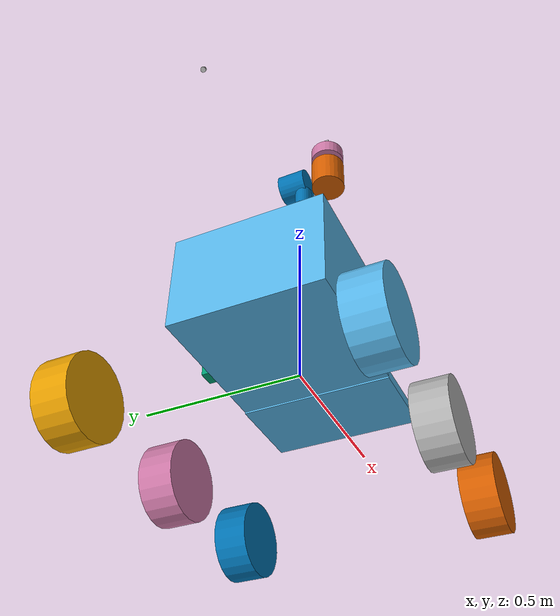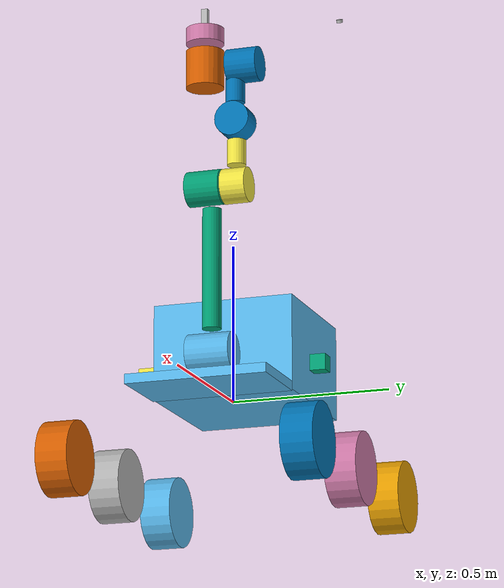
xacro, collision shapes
<?xml version="1.0"?>
<robot xmlns:xacro="http://www.ros.org/wiki/xacro" name="uirover">
    <xacro:arg name="initial_positions_file" default="initial_positions.yaml" />

    <!-- Import uirover urdf file -->
    <xacro:include filename="$(find uirover_description)/urdf/uirover.urdf.xacro" />

    <!-- Import control_xacro -->
    <xacro:include filename="uirover.ros2_control.xacro" />

    <xacro:uirover_ros2_control name="CANBusArm" initial_positions_file="$(arg initial_positions_file)"/>

</robot>

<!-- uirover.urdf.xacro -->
<robot name="uirover" xmlns:xacro="http://www.ros.org/wiki/xacro">
    <!-- Physical Description -->
    <xacro:include filename="$(find uirover_description)/xacro/chassis.urdf.xacro"/>

    <!-- Hardware -->

    <!-- Sensors -->
    <xacro:include filename="$(find uirover_description)/xacro/sensors.urdf.xacro"/>

    <!-- Arm -->
    <xacro:include filename="$(find uirover_description)/xacro/arm.urdf.xacro"/>
</robot>

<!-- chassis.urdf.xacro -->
<robot name="uirover" xmlns:xacro="http://www.ros.org/wiki/xacro">
  <!-- IMPORTS -->
  <xacro:include filename="$(find uirover_description)/xacro/utility_macros.xacro" />
  <xacro:include filename="$(find uirover_description)/xacro/properties.xacro" />

  <!-- BASE LINK -->
  <link name="base_link"></link>

  <!-- CHASSIS -->
  <link name="chassis">
    <visual>
      <origin xyz="-0.35 0.203 0.0" rpy="${pi/2} 0.0 0.0" />
      <geometry>
        <mesh filename="file://$(find uirover_description)/dae/chassis.dae" />
      </geometry>
    </visual>
    <collision>
      <geometry>
        <box size="0.45 0.45 0.3" />
      </geometry>
      <origin xyz="-0.12 0 0.15" />
    </collision>
    <collision>
      <geometry>
        <box size="0.25 0.45 0.03" />
      </geometry>
      <origin xyz="0.23 0 0.01"/>
    </collision>
    <xacro:box_inertia_tensor mass="30" len_x="0.65" len_y="0.4" len_z="0.2" />
  </link>
  <joint name="chassis_joint" type="fixed">
    <parent link="base_link" />
    <child link="chassis" />
    <origin xyz="0 0 0" rpy="0 0 0" />
  </joint>

  <!--L
  SUSPENSIONS-->
  <link name="l_suspension">
    <visual>
      <origin xyz="0.085 0.02 -0.06" rpy="${pi/2} 0.0 ${pi}" />
      <geometry>
        <mesh filename="file://$(find uirover_description)/dae/suspension.dae" />
      </geometry>
    </visual>
    <collision>
      <geometry>
        <box size="0.05 0.05 0.05" />
      </geometry>
    </collision>
    <xacro:box_inertia_tensor mass="2" len_x="0.65" len_y="0.05" len_z="0.15" x="0.1" y="0" z="-0.1" />
  </link>
  <joint name="l_suspension_joint" type="fixed">
    <parent link="chassis" />
    <child link="l_suspension" />
    <origin xyz="0 0.28 0.1" rpy="0 0 0" />
    <axis xyz="0 1 0" />
  </joint>

  <!--R
  SUSPENSIONS-->
  <link name="r_suspension">
    <visual>
      <origin xyz="0.085 0.02 -0.06" rpy="${pi/2} 0.0 ${pi}" />
      <geometry>
        <mesh filename="file://$(find uirover_description)/dae/suspension.dae" />
      </geometry>
    </visual>
    <collision>
      <geometry>
        <box size="0.05 0.05 0.05" />
      </geometry>
    </collision>
    <xacro:box_inertia_tensor mass="2" len_x="0.65" len_y="0.05" len_z="0.15" x="0.1" y="0" z="-0.1" />
  </link>
  <joint name="r_suspension_joint" type="fixed">
    <parent link="chassis" />
    <child link="r_suspension" />
    <origin xyz="0 -0.28 0.1" rpy="0 0 0" />
    <axis xyz="0 1 0" />
  </joint>

  <!-- WHEELS -->
  <xacro:wheel name="fl_wheel" x="0.436" y="0.1" z="-0.342" parent="l_suspension" side="left" />
  <xacro:wheel name="fr_wheel" x="0.436" y="-0.1" z="-0.342" parent="r_suspension" side="right" />
  <xacro:wheel name="ml_wheel" x="0.016" y="0.1" z="-0.342" parent="l_suspension" side="left" />
  <xacro:wheel name="mr_wheel" x="0.016" y="-0.1" z="-0.342" parent="r_suspension" side="right" />
  <xacro:wheel name="bl_wheel" x="-0.434" y="0.1" z="-0.342" parent="l_suspension" side="left" />
  <xacro:wheel name="br_wheel" x="-0.434" y="-0.1" z="-0.342" parent="r_suspension" side="right" />

  <!-- Robot Footprint -->
  <!-- This is needed for nav libraries. Its the 2D top-down profile of the robot. Makes for simpler
  collision detection. -->
  <link name="base_footprint" />
  <joint name="base_footprint_joint" type="fixed">
    <parent link="base_link" />
    <child link="base_footprint" />
    <origin xyz="0.0 0.0 -0.3" rpy="0 0 0" />
  </joint>

</robot>

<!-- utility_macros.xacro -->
<robot name="uirover" xmlns:xacro="http://ros.org/wiki/xacro">

  <!-- BOX INERTIA -->
  <xacro:macro name="box_inertia_tensor" params="mass len_x len_y len_z x:=0 y:=0 z:=0">
    <inertial>
      <mass value="${mass}" />
      <inertia ixx="${(1/12)*mass*(len_z*len_z+len_y*len_y)}" ixy="0.0" ixz="0.0"
        iyy="${(1/12)*mass*(len_z*len_z+len_x*len_x)}" iyz="0.0"
        izz="${(1/12)*mass*(len_x*len_x+len_y*len_y)}" />
        <origin xyz="${x} ${y} ${z}" rpy="0 0 0" />
    </inertial>
  </xacro:macro>

  <!-- CYLINDER INERTIA -->
  <xacro:macro name="cylinder_inertia_tensor" params="mass radius length">
    <inertial>
      <mass value="${mass}" />
      <inertia ixx="${(1/12)*mass*(3*radius*radius+length*length)}" ixy="0.0" ixz="0.0"
        iyy="${(1/12)*mass*(3*radius*radius+length*length)}" iyz="0.0"
        izz="${(1/2)*mass*radius*radius}" />
    </inertial>
  </xacro:macro>

  <!-- COLLIDABLE BOX -->
  <xacro:macro name="box" params="name x y z mass">
    <link name="${name}">
      <visual>
        <geometry>
          <box size="${x} ${y} ${z}" />
        </geometry>
        <material name="Grey">
          <color rgba="0.7 0.7 0.7 1.0" />
        </material>
      </visual>
      <collision>
        <geometry>
          <box size="${x} ${y} ${z}" />
        </geometry>
      </collision>
      <xacro:box_inertia_tensor mass="${mass}" len_x="${x}" len_y="${y}" len_z="${z}" />
    </link>
  </xacro:macro>

  <!-- WHEEL -->
  <xacro:macro name="wheel" params="name x y z parent side:=^|left">
    <link name="${name}">
      <visual>
        <xacro:if value="${side == 'left'}">
          <origin xyz="0 0 -0.08" rpy="0 ${pi/2} 0" />
        </xacro:if>
        <xacro:if value="${side == 'right'}">
          <origin xyz="0 0 0.08" rpy="0 ${-pi/2} 0" />
        </xacro:if>
        <geometry>
          <mesh filename="file://$(find uirover_description)/dae/wheel.dae"/>
        </geometry>
      </visual>
      <collision>
        <geometry>
          <cylinder radius="${wheel_diameter/2}" length="${wheel_width}" />
        </geometry>
      </collision>
      <xacro:cylinder_inertia_tensor mass="${wheel_mass}" radius="${wheel_diameter/2}"
        length="${wheel_width}" />
    </link>
    <joint name="${name}_joint" type="continuous">
      <parent link="${parent}" />
      <child link="${name}" />
      <origin xyz="${x} ${y} ${z}" rpy="${-pi/2} 0 0" />
      <axis xyz="0 0 1" />
      <limit effort="30.0" velocity="10.0"/> <!-- 10 rad/s ~ 2.5 mph top speed assuming 9 in diameter tires-->
    </joint>
  </xacro:macro>
</robot>

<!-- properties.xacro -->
<robot name="uirover" xmlns:xacro="http://ros.org/wiki/xacro">
    <xacro:property name="wheel_diameter" value="0.23" />
    <xacro:property name="chassis_width" value="0.45" />
    <xacro:property name="chassis_length" value="0.45" />
    <xacro:property name="chassis_height" value="0.30" />
    <xacro:property name="chassis_mass" value="5" />

    <xacro:property name="arm_platform_width" value="${chassis_width}" />
    <xacro:property name="arm_platform_length" value="0.3" />
    <xacro:property name="arm_platform_height" value="0.05" />
    <xacro:property name="arm_platform_mass" value="3" />

    <xacro:property name="wheel_width" value="0.1" />
    <xacro:property name="wheel_diameter" value="0.228" />
    <xacro:property name="wheel_mass" value="0.5" />
    <xacro:property name="wheel_distance_side" value="0.4" />
    <xacro:property name="wheel_spacing" value="0.4" />
    <xacro:property name="suspension_height" value="0.20"/>
</robot>

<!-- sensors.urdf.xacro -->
<robot name="uirover"
    xmlns:xacro="http://www.ros.org/wiki/xacro">
    <xacro:include filename="$(find uirover_description)/xacro/utility_macros.xacro" />
    <!-- http://sdformat.org/spec?ver=1.9&elem=sensor -->

    <xacro:macro name="arducam" params="name">
        <link name="${name}">
            <visual>
                <origin xyz="0.0 0.0 0.0" rpy="0.0 ${pi/2} 0.0" />
                <geometry>
                    <cylinder radius="0.01" length="0.01" />
                </geometry>
                <material name="Grey">
                    <color rgba="0.7 0.7 0.7 1.0" />
                </material>
            </visual>
            <visual>
                <origin xyz="-0.005 0.0 0.0" rpy="0.0 0.0 0.0" />
                <geometry>
                    <box size="0.005 0.03 0.03" />
                </geometry>
            </visual>
            <collision>
                <geometry>
                    <cylinder radius="0.01" length="0.01" />
                </geometry>
            </collision>
            <xacro:cylinder_inertia_tensor mass="0.1" radius="0.01" length="0.01" />
        </link>
        <gazebo reference="${name}">
            <sensor name="camera" type="camera">
                <topic>${name}</topic>
                <camera>
                    <box_type>2d</box_type>
                    <!-- 110 deg FOV -->
                    <horizontal_fov>1.9198</horizontal_fov>
                    <image>
                        <width>800</width>
                        <height>600</height>
                    </image>
                    <clip>
                        <near>0.1</near>
                        <far>100</far>
                    </clip>
                </camera>
                <always_on>1</always_on>
                <update_rate>5</update_rate>
                <visualize>true</visualize>
            </sensor>
        </gazebo>
    </xacro:macro>

    <!--            SENSORS              -->

    <!-- ARDUCAM CAMERA -->
    <xacro:arducam name="antenna_camera" />
    <joint name="antenna_camera_joint" type="fixed">
        <origin xyz="-0.24 0.28 1.3" rpy="0.0 0.5 0.0" />
        <parent link="base_link" />
        <child link="antenna_camera" />
    </joint>

    <link name="zed_f9p_gps"></link>
    <gazebo reference="zed_f9p_gps">
        <sensor name="zed_f9p_gps" type="navsat">
            <topic>navsat</topic>
            <always_on>true</always_on>
            <update_rate>5</update_rate>
            <navsat>
            </navsat>
        </sensor>
    </gazebo>
    <joint name="zed_f9p_gps_joint" type="fixed">
        <!-- TODO origin coords are a placeholder. not important unless using RTK -->
        <origin xyz="0 0 0"/>
        <parent link="base_link"/>
        <child link="zed_f9p_gps"/>
    </joint>

    <!-- This joint exists because Gazebo Jetty doesnt support manually setting frame_id of GPS messages. -->
    <!-- The message uses a really weird namespaceing so we do this rediculous hack so the TF tree doesnt break -->
    <link name="uirover/base_link/zed_f9p_gps"></link>
    <joint name="stupid_gazebo_workaround_joint" type="fixed">
        <origin xyz="0 0 0"/>
        <parent link="zed_f9p_gps"/>
        <child link="uirover/base_link/zed_f9p_gps"/>
    </joint>

    <!-- https://cdrdv2-public.intel.com/841984/Intel-RealSense-D400-Series-Datasheet.pdf -->
    <link name="d435i_depth_cam"></link>
    <gazebo reference="d435i_depth_cam">
        <sensor name="d435i_depth_cam" type="depth">
            <topic>/d435i_rgbd</topic>
            <always_on>1</always_on>
            <update_rate>5</update_rate>
            <visualize>true</visualize>
            <camera>
                <!-- 86 deg FOV -->
                <camera_info_topic>/d435i_rgbd_info</camera_info_topic>
                <optical_frame_id>d435i_depth_cam</optical_frame_id>
                <horizontal_fov>1.50098</horizontal_fov>
                <image>
                    <!-- Low resolution for performance reasons -->
                    <width>640</width>
                    <height>380</height>
                    <format>B8G8R8</format>
                </image>
                <clip>
                    <near>0.01</near>
                    <far>5</far>                    <!-- required unless youre using a NASA super computer-->
                </clip>
                <depth_camera>
                    <output>depths</output>
                </depth_camera>
            </camera>
        </sensor>
    </gazebo>
    <joint name="d435i_depth_cam_joint" type="fixed">
        <!-- TODO origin coords are a placeholder. not important unless using RTK -->
        <origin xyz="0.4 0.2 0"/>
        <parent link="base_link"/>
        <child link="d435i_depth_cam"/>
    </joint>

    <link name="imu_sensor"></link>
    <gazebo reference="imu_sensor">
        <sensor name="imu_sensor" type="imu">
            <always_on>true</always_on>
            <update_rate>5</update_rate>
            <visualize>true</visualize>
            <topic>/imu</topic>
            <imu>
                <enable_orientation>true</enable_orientation>
                <angular_velocity>
                    <x>
                        <noise type="gaussian">
                            <mean>0.0</mean>
                            <stddev>2e-4</stddev>
                            <bias_mean>0.0000075</bias_mean>
                            <bias_stddev>0.0000008</bias_stddev>
                        </noise>
                    </x>
                    <y>
                        <noise type="gaussian">
                            <mean>0.0</mean>
                            <stddev>2e-4</stddev>
                            <bias_mean>0.0000075</bias_mean>
                            <bias_stddev>0.0000008</bias_stddev>
                        </noise>
                    </y>
                    <z>
                        <noise type="gaussian">
                            <mean>0.0</mean>
                            <stddev>2e-4</stddev>
                            <bias_mean>0.0000075</bias_mean>
                            <bias_stddev>0.0000008</bias_stddev>
                        </noise>
                    </z>
                </angular_velocity>
                <linear_acceleration>
                    <x>
                        <noise type="gaussian">
                            <mean>0.0</mean>
                            <stddev>1.7e-2</stddev>
                            <bias_mean>0.1</bias_mean>
                            <bias_stddev>0.001</bias_stddev>
                        </noise>
                    </x>
                    <y>
                        <noise type="gaussian">
                            <mean>0.0</mean>
                            <stddev>1.7e-2</stddev>
                            <bias_mean>0.1</bias_mean>
                            <bias_stddev>0.001</bias_stddev>
                        </noise>
                    </y>
                    <z>
                        <noise type="gaussian">
                            <mean>0.0</mean>
                            <stddev>1.7e-2</stddev>
                            <bias_mean>0.1</bias_mean>
                            <bias_stddev>0.001</bias_stddev>
                        </noise>
                    </z>
                </linear_acceleration>
            </imu>
        </sensor>
    </gazebo>
    <joint name="imu_sensor_joint" type="fixed">
        <origin xyz="0 0 0"/>
        <parent link="base_link"/>
        <child link="imu_sensor"/>
    </joint>

</robot>

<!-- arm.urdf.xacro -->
<robot name="uirover" xmlns:xacro="http://www.ros.org/wiki/xacro">

    <material name="grey">
        <color rgba=".7 .7 .7 1.0"/>
    </material>

    <link name="arm_base_link"></link>
    <joint name="arm_base_joint" type="fixed">
        <parent link="base_link" />
        <child link="arm_base_link" />
        <origin xyz="0.2 0 0" rpy="0 0 0" />
    </joint>

    <link name="arm_l0">
        <visual>
            <origin xyz="0 0 0" rpy="0.0 0.0 0.0" />
            <geometry>
                <mesh filename="file://$(find uirover_description)/dae/Arm_L0.dae" />
            </geometry>
        </visual>
        <collision>
            <geometry>
                <cylinder radius="0.06" length="0.14" />
            </geometry>
            <origin xyz="0 0 0.11" rpy="${pi/2} 0 0" />
        </collision>
        <!-- approximate inertial (mass ~1.0 kg) computed from main cylinder collision -->
        <inertial>
            <origin xyz="0 0 0.11" rpy="${pi/2} 0 0" />
            <mass value="1.0"/>
            <inertia ixx="0.002533" ixy="0.0" ixz="0.0" iyy="0.002533" iyz="0.0" izz="0.001800"/>
        </inertial>
    </link>
    <joint name="arm_j0" type="revolute">
        <parent link="arm_base_link" />
        <child link="arm_l0" />
        <origin xyz="0 0 0" rpy="0 0 0" />
        <axis xyz="0 0 1" />
        <limit lower="-3.0" upper="3.0" effort="40.0" velocity="0.5"/>
    </joint>

    <link name="arm_l1">
        <visual>
            <origin xyz="0 0 -0.104" rpy="0.0 0.0 0.0" />
            <geometry>
                <mesh filename="file://$(find uirover_description)/dae/Arm_L1.dae" />
            </geometry>
        </visual>
        <collision>
            <geometry>
                <cylinder radius="0.03" length="0.38" />
            </geometry>
            <origin xyz="0 0 0.27" rpy="0 0 0" />
        </collision>
        <collision>
            <geometry>
                <cylinder radius="0.055" length="0.11" />
            </geometry>
            <origin xyz="0 -0.02 0.53" rpy="${pi/2} 0 0" />
        </collision>
        <!-- approximate inertial (mass ~2.0 kg) using main long cylinder -->
        <inertial>
            <origin xyz="0 0 0.27" rpy="0 0 0" />
            <mass value="2.0"/>
            <inertia ixx="0.024517" ixy="0.0" ixz="0.0" iyy="0.024517" iyz="0.0" izz="0.000900"/>
        </inertial>
    </link>
    <joint name="arm_j1" type="revolute">
        <parent link="arm_l0" />
        <child link="arm_l1" />
        <origin xyz="0 0 0.104" rpy="0 0 0" />
        <axis xyz="0 1 0" />
        <limit lower="-3.0" upper="3.0" effort="40.0" velocity="0.5"/>
    </joint>

    <link name="arm_l2">
        <visual>
            <origin xyz="0 0 -0.638" rpy="0.0 0.0 0.0" />
            <geometry>
                <mesh filename="file://$(find uirover_description)/dae/Arm_L2.dae" />
            </geometry>
        </visual>
        <collision>
            <geometry>
                <cylinder radius="0.055" length="0.08" />
            </geometry>
            <origin xyz="0 0.08 -0.005" rpy="${pi/2} 0 0" />
        </collision>
        <collision>
            <geometry>
                <cylinder radius="0.03" length="0.08" />
            </geometry>
            <origin xyz="0 0.08 0.1" rpy="0 0 0" />
        </collision>
        <!-- approximate inertial (mass ~1.5 kg) using larger-radius cylinder -->
        <inertial>
            <origin xyz="0 0.08 -0.005" rpy="${pi/2} 0 0" />
            <mass value="1.5"/>
            <inertia ixx="0.001934" ixy="0.0" ixz="0.0" iyy="0.001934" iyz="0.0" izz="0.002269"/>
        </inertial>
    </link>
    <joint name="arm_j2" type="revolute">
        <parent link="arm_l1" />
        <child link="arm_l2" />
        <origin xyz="0 0 0.534" rpy="0 0 0" />
        <axis xyz="0 1 0" />
        <limit lower="-${pi}" upper="${pi}" effort="40.0" velocity="0.5"/>S
    </joint>

    <link name="arm_l3">
        <visual>
            <origin xyz="0 -.076 -0.841" rpy="0.0 0.0 0.0" />
            <geometry>
                <mesh filename="file://$(find uirover_description)/dae/Arm_L3.dae" />
            </geometry>
        </visual>
        <collision>
            <geometry>
                <cylinder radius="0.055" length="0.08" />
            </geometry>
            <origin xyz="0 0 0" rpy="0 ${pi/2} 0" />
        </collision>
        <collision>
            <geometry>
                <cylinder radius="0.03" length="0.08" />
            </geometry>
            <origin xyz="0 0 0.1" rpy="0 0 0" />
        </collision>
        <collision>
            <geometry>
                <cylinder radius="0.055" length="0.1" />
            </geometry>
            <origin xyz="0 0.03 0.18" rpy="${pi/2} 0 0" />
        </collision>
        <!-- approximate inertial (mass ~1.5 kg) using larger cylinder/combined geometry -->
        <inertial>
            <origin xyz="0 0 0" rpy="0 ${pi/2} 0" />
            <mass value="1.5"/>
            <inertia ixx="0.002384" ixy="0.0" ixz="0.0" iyy="0.002384" iyz="0.0" izz="0.002269"/>
        </inertial>
    </link>
    <joint name="arm_j3" type="revolute">
        <parent link="arm_l2" />
        <child link="arm_l3" />
        <origin xyz="0 0.076 0.203" rpy="0 0 0" />
        <axis xyz="1 0 0" />
        <limit lower="${-pi}" upper="${pi}" effort="40.0" velocity="0.5"/>
    </joint>

    <link name="arm_l4">
        <visual>
            <origin xyz="0 -.05 -1.02" rpy="0.0 0.0 0.0" />
            <geometry>
                <mesh filename="file://$(find uirover_description)/dae/Arm_L4.dae" />
            </geometry>
        </visual>
        <collision>
            <geometry>
                <cylinder radius="0.06" length="0.12" />
            </geometry>
            <origin xyz="0 -0.075 0" rpy="0 0 0" />
        </collision>
        <!-- approximate inertial (mass ~0.7 kg) using main cylinder -->
        <inertial>
            <origin xyz="0 -0.075 0" rpy="0 0 0" />
            <mass value="0.7"/>
            <inertia ixx="0.001470" ixy="0.0" ixz="0.0" iyy="0.001470" iyz="0.0" izz="0.001260"/>
        </inertial>
    </link>
    <joint name="arm_j4" type="revolute">
        <parent link="arm_l3" />
        <child link="arm_l4" />
        <origin xyz="0 -0.025 0.179" rpy="0 0 0" />
        <axis xyz="0 1 0" />
        <limit lower="${-pi}" upper="${pi}" effort="40.0" velocity="0.5"/>
    </joint>

    <link name="arm_l5">
        <visual>
            <origin xyz="0 0.026 -1.1" rpy="0.0 0.0 0.0" />
            <geometry>
                <mesh filename="file://$(find uirover_description)/dae/Arm_L5.dae" />
            </geometry>
        </visual>
        <collision>
            <geometry>
                <cylinder radius="0.06" length="0.05" />
            </geometry>
            <origin xyz="0 0 0.03" rpy="0 0 0" />
        </collision>
        <!-- approximate inertial (mass ~0.2 kg) small end link -->
        <inertial>
            <origin xyz="0 0 0.03" rpy="0 0 0" />
            <mass value="0.2"/>
            <inertia ixx="0.000222" ixy="0.0" ixz="0.0" iyy="0.000222" iyz="0.0" izz="0.000360"/>
        </inertial>
    </link>
    <joint name="arm_j5" type="continuous">
        <parent link="arm_l4" />
        <child link="arm_l5" />
        <origin xyz="0 -0.075 0.08" rpy="0 0 0" />
        <axis xyz="0 0 1" />
        <limit effort="40.0" velocity="0.5"/>
    </joint>

    <link name="end_effector">
        <visual>
            <geometry>
                <box size=".02 .02 .1"/>
            </geometry>
            <origin xyz="0 0 -0.05" rpy="0 0 0" />
            <material name="grey"/>
        </visual>
        <collision>
            <geometry>
                <box size=".02 .02 .1"/>
            </geometry>
            <origin xyz="0 0 -0.05" rpy="0 0 0" />
        </collision>
        <!-- approximate inertial (mass ~0.1 kg) for small end effector box -->
        <inertial>
            <origin xyz="0 0 -0.05" rpy="0 0 0" />
            <mass value="0.1"/>
            <inertia ixx="8.6667e-05" ixy="0.0" ixz="0.0" iyy="8.6667e-05" iyz="0.0" izz="6.6667e-06"/>
        </inertial>
    </link>
    <joint name="end_effector_joint" type="fixed">
        <parent link="arm_l5" />
        <child link="end_effector" />
        <origin xyz="0 0 0.12" rpy="0 0 0" />
    </joint>

</robot>
